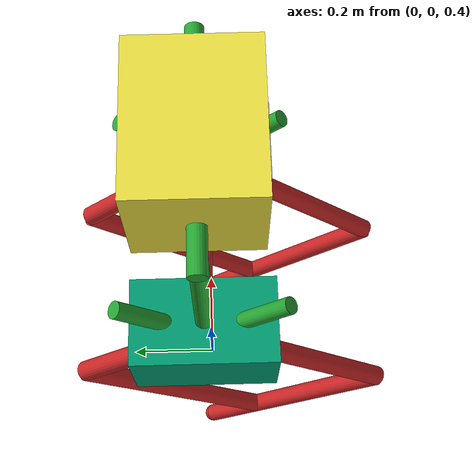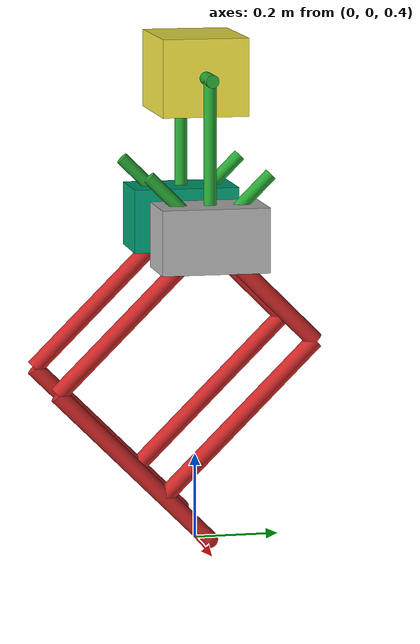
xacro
<?xml version="1.0"?>

<!-- Header File for ATRIAS 2.0 Robot Model -->
<!-- Adapted for ATRIAS 2.0 in Winter Term 2012 by Andrew Peekema and Matthew Rueben -->

<robot name="atrias"
	xmlns:sensor="http://playerstage.sourceforge.net/gazebo/xmlschema/#sensor"
	xmlns:controller="http://playerstage.sourceforge.net/gazebo/xmlschema/#controller"
	xmlns:joint="http://playerstage.sourceforge.net/gazebo/xmlschema/#slider"
	xmlns:xacro="http://www.ros.org/wiki/xacro"
	xmlns:interface="http://playerstage.sourceforge.net/gazebo/xmlschema/#interface"
	xmlns:model="http://playerstage.sourceforge.net/gazebo/xmlschema/#model"
	xmlns:geo="http://willowgarage.com/xmlschema/#geo"
	xmlns:geom="http://playerstage.sourceforge.net/gazebo/xmlschema/#geom"
	xmlns:body="http://playerstage.sourceforge.net/gazebo/xmlschema/#body" >

	<!-- get robot model macro -->
	<include filename="atrias20_leg.urdf.xacro" />
	<include filename="atrias20_torso.urdf.xacro" />
	<include filename="planar_constraint.urdf.xacro" />

	<!--                    Constaints and Model                                 -->

	<!-- Planar Constraint -->
	<xacro:planar_constraint child_attachment_link="torso" />

	<!-- Torso Body -->
	<xacro:atrias_torso torso_link="torso" />

	<!-- Leg 1 -->
	<xacro:torso_motor torso_link="torso" hip_link="leg_hip_link" reflect="1" suffix="1" />

	<xacro:torso_leg_joint hip_link="leg_hip_link" reflect="1" suffix="1" />

	<xacro:atrias_leg hip_link="leg_hip_link" suffix="1">
		<origin xyz="0 0 0.002" />
		<axis>1 0 0</axis>
 	</xacro:atrias_leg>
	<!-- Note: Origin = hip center of mass, and axis = axis of rotation for 4-bar linkage -->

	<!-- Leg 2 -->
	<xacro:torso_motor torso_link="torso" hip_link="leg_hip_link" reflect="-1" suffix="2" />

	<xacro:torso_leg_joint hip_link="leg_hip_link" reflect="-1" suffix="2" />

	<xacro:atrias_leg hip_link="leg_hip_link" suffix="2">
		<origin xyz="0 0 0.002" />
		<axis>1 0 0</axis>
 	</xacro:atrias_leg>

	<!--                    Controller			                                 -->

	<!-- initializes the all-in-one controller with the correct link names, etc. -->
</robot>

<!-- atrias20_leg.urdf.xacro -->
<!-- ATRIAS 2.0 Leg Robot Model -->
<!-- Adapted for ATRIAS 2.0 in Winter Term 2012 by Andrew Peekema and Matthew Rueben -->

<robot
	xmlns:sensor="http://playerstage.sourceforge.net/gazebo/xmlschema/#sensor"
	xmlns:controller="http://playerstage.sourceforge.net/gazebo/xmlschema/#controller"
	xmlns:joint="http://playerstage.sourceforge.net/gazebo/xmlschema/#slider"
	xmlns:xacro="http://www.ros.org/wiki/xacro"
	xmlns:interface="http://playerstage.sourceforge.net/gazebo/xmlschema/#interface"
	xmlns:model="http://playerstage.sourceforge.net/gazebo/xmlschema/#model"
	xmlns:geo="http://willowgarage.com/xmlschema/#geo"
	xmlns:geom="http://playerstage.sourceforge.net/gazebo/xmlschema/#geom"
	xmlns:body="http://playerstage.sourceforge.net/gazebo/xmlschema/#body" >

	<!-- Mathematical Constants -->
	<property name="M_PI" value="3.14159"/>
	<property name="SQRT_2" value="1.41421356"/>

	<!-- Visual Parameters (no effect on physical simulation) -->
	<property name="body_size" value="0.25 0.15 0.15" />
	<property name="visual_motor_radius" value="0.015" />
	<property name="leg_segment_radius" value="0.02" />
	<property name="toe_radius" value="0.02" />
	<property name="visual_motor_length" value="0.4" />

	<!-- Leg Segment Lengths -->
	<property name="thigh_length" value="0.500" />
	<property name="shin_length" value="0.350" />
	<property name="lower_length" value="0.500" />
	<property name="fourBar_length" value="0.500" />

	<!-- Link Masses -->
	<property name="body_mass" value="11.61" />
	<property name="motor_mass" value="1.273" />
	<property name="thigh_mass" value="3.132" />
	<property name="shin_mass" value="3.137" />
	<property name="lower_mass" value="0.204" />
	<property name="fourBar_mass" value="0.166" />
	<property name="toe_mass" value="0.087" />

	<!-- Spring/Damping Coefficients -->
	<property name="spring_stiffness" value="1200" />	<!-- N*m/rad -->
	<property name="motor_damping" value="0" />		<!-- N*m*s/rad -->
	<property name="motor_friction" value="0" />

	<!-- macro to use in the header file when parsed by xacro -->
	<xacro:macro name="atrias_leg" params="hip_link suffix *origin *axis" >

		<!--								Body                                     -->

		<link name="${hip_link}${suffix}">
			<inertial>
				<insert_block name="origin" />
				<mass value="${body_mass}" />
				<inertia ixx="0.0932" ixy="0.0044" ixz="-0.0019"
						 iyy="0.0833" iyz="-0.0102"
					     izz="0.0785" />
			</inertial>
			<visual>
				<origin xyz="0 0 0" rpy="0 0 0" />
				<geometry>
				  <box size="${body_size}" />
				</geometry>
			</visual>
			<collision>
				<origin xyz="0 0 0" rpy="0 0 0" />
				<geometry>
				  <box size="${body_size}" />
				</geometry>
			</collision>
		</link>

		<gazebo reference="${hip_link}${suffix}">
			<material>Gazebo/BumpyMetal</material>
		</gazebo>

		<!--								Thigh Motor                              -->

		<joint name="hip_thighMotor_joint${suffix}" type="continuous">
			<axis xyz="0 1 0" />
			<origin xyz="0 0 0" rpy="0 0 0" />
			<parent link="${hip_link}${suffix}" />
			<child link="thighMotor_link${suffix}" />
</joint>

		<link name="thighMotor_link${suffix}">
			<inertial>
				<mass value="${motor_mass}"/>
				<origin xyz="0 -0.044 0" />
				<inertia ixx="4" ixy="0" ixz="0"
				         iyy="7.25" iyz="0"
				         izz="4" />
			</inertial>
			<visual>
				<origin xyz="0 0 0" rpy="0 ${-M_PI/4} 0" />
				<geometry>
				  <cylinder length="${visual_motor_length}" radius="${visual_motor_radius}" />
				</geometry>
			</visual>
			<collision>
				<origin xyz="0 0 0" rpy="0 ${-M_PI/4} 0" />
				<geometry>
					<cylinder length="${visual_motor_length}" radius="${visual_motor_radius}" />
				</geometry>
			</collision>
		</link>

		<gazebo reference="thighMotor_link${suffix}">
			<material> Gazebo/Green </material>
		</gazebo>

		<gazebo>
            <controller:joint_impedance name="thighDamping${suffix}" plugin="libjoint_impedance.so">
                <alwaysOn> true </alwaysOn>
                <updateRate> 10000 </updateRate>
				<bodyName1> ${hip_link}${suffix} </bodyName1>
				<bodyName2> thighMotor_link${suffix} </bodyName2>
                <rotationalDamping> ${motor_damping} </rotationalDamping>
                <rotationalFriction> ${motor_friction} </rotationalFriction>
            </controller:joint_impedance>

			<controller:spring name="thighSpring${suffix}" plugin="libspring.so">
				<alwaysOn> true </alwaysOn>
				<updateRate> 10000 </updateRate>
				<bodyName1> thighMotor_link${suffix} </bodyName1>
				<bodyName2> thigh_link${suffix} </bodyName2>
				<rotationalStiffness> ${spring_stiffness} </rotationalStiffness>
			</controller:spring>
		</gazebo>

		<!--					Shin Motor                                           -->

		<joint name="hip_shinMotor_joint${suffix}" type="continuous">
			<axis xyz="0 1 0" />
			<origin xyz="0 0 0" rpy="0 0 0" />
			<parent link="${hip_link}${suffix}" />
			<child link="shinMotor_link${suffix}"/>
</joint>

		<link name="shinMotor_link${suffix}">
			<inertial>
				<mass value="${motor_mass}"/>
				<origin xyz="0 0.044 0" />
				<inertia ixx="4" ixy="0" ixz="0"
				         iyy="7.25" iyz="0"
				         izz="4" />
			</inertial>
			<visual>
				<origin xyz="0 0 0" rpy="0 ${M_PI/4} 0" />
				<geometry>
				  <cylinder length="${visual_motor_length}" radius="${visual_motor_radius}" />
				</geometry>
			</visual>
			<collision>
				<origin xyz="0 0 0" rpy="0 ${M_PI/4} 0" />
				<geometry>
					<cylinder length="${visual_motor_length}" radius="${visual_motor_radius}" />
				</geometry>
			</collision>
		</link>

		<gazebo reference="shinMotor_link${suffix}">
			<material>Gazebo/Green</material>
		</gazebo>

        <gazebo>
            <controller:joint_impedance name="shinDamping${suffix}" plugin="libjoint_impedance.so">
                <alwaysOn> true </alwaysOn>
                <updateRate> 10000 </updateRate>
				<bodyName1> ${hip_link}${suffix} </bodyName1>
				<bodyName2> shinMotor_link${suffix} </bodyName2>
                <rotationalDamping> ${motor_damping} </rotationalDamping>
                <rotationalFriction> ${motor_friction} </rotationalFriction>
            </controller:joint_impedance>

			<controller:spring name="shinSpring${suffix}" plugin="libspring.so">
				<alwaysOn> true </alwaysOn>
				<updateRate> 10000 </updateRate>
				<bodyName1> shinMotor_link${suffix} </bodyName1>
				<bodyName2> shin_link${suffix} </bodyName2>
				<rotationalStiffness> ${spring_stiffness} </rotationalStiffness>
			</controller:spring>
		</gazebo>

		<!--							 Thigh 										-->

		<joint name="body_thigh_joint${suffix}" type="continuous">
			<axis xyz="0 1 0" />
			<origin xyz="0 0 0" rpy="0 0 0" />
			<parent link="${hip_link}${suffix}" />
			<child link="thigh_link${suffix}"/>
</joint>

		<link name="thigh_link${suffix}">
			<inertial>
				<mass value="${thigh_mass}"/>
				<origin xyz="0.100 -0.020 -0.011" />
				<inertia ixx="0.0339" ixy="0.0056" ixz="-0.0179"
				         iyy="0.0688" iyz="-0.0017"
				         izz="0.0512" />
			</inertial>
			<visual>
				<origin xyz="${thigh_length/SQRT_2/2} 0 ${-thigh_length/SQRT_2/2}" rpy="0 ${-M_PI/4} 0" />
				<geometry>
				  <cylinder length="${thigh_length}" radius="${leg_segment_radius}" />
				</geometry>
			</visual>
			<collision>
				<origin xyz="${thigh_length/SQRT_2/2} 0 ${-thigh_length/SQRT_2/2}" rpy="0 ${-M_PI/4} 0" />
				<geometry>
					<cylinder length="${thigh_length}" radius="${leg_segment_radius}" />
				</geometry>
			</collision>
		</link>

		<gazebo reference="thigh_link${suffix}">
			<material>Gazebo/Red</material>
		</gazebo>

		<!--							 Shin 			 							-->

		<joint name="body_shin_joint${suffix}" type="continuous">
			<axis xyz="0 1 0" />
			<origin xyz="0 0 0" rpy="0 0 0" />
			<parent link="${hip_link}${suffix}" />
			<child link="shin_link${suffix}"/>
</joint>

		<link name="shin_link${suffix}">
			<inertial>
				<mass value="${shin_mass}"/>
				<origin xyz="-0.0979 0.0200 -0.0081" />
				<inertia ixx="0.0309" ixy="0.0054" ixz="0.0154"
				         iyy="0.0637" iyz="0.0014"
				         izz="0.0493" />
			</inertial>
			<visual>
				<origin xyz="${-shin_length/SQRT_2/2} 0 ${-shin_length/SQRT_2/2}" rpy="0 ${M_PI/4} 0" />
				<geometry>
				  <cylinder length="${shin_length}" radius="${leg_segment_radius}" />
				</geometry>
			</visual>
			<collision>
				<origin xyz="${-shin_length/SQRT_2/2} 0 ${-shin_length/SQRT_2/2}" rpy="0 ${M_PI/4} 0" />
				<geometry>
					<cylinder length="${shin_length}" radius="${leg_segment_radius}" />
				</geometry>
			</collision>
		</link>

		<gazebo reference="shin_link${suffix}">
			<material>Gazebo/Red</material>
		</gazebo>

		<!--								 Lower Link					 			-->

		<joint name="thigh_lower_joint${suffix}" type="revolute">
			<axis xyz="0 1 0" />
			<origin xyz="${thigh_length/SQRT_2} 0 ${-thigh_length/SQRT_2}" rpy="0 0 0" />
			<parent link="thigh_link${suffix}" />
			<child link="lower_link${suffix}"/>
			<limit lower="${-M_PI/2+0.05}" upper="${M_PI/2}" effort="10000000000000" velocity="100000000000000" />
		</joint>

		<link name="lower_link${suffix}">
			<inertial>
				<mass value="${lower_mass}"/>
				<origin xyz="-0.127 0 -0.141" />
				<inertia ixx="0.0027" ixy="0" ixz="0.0026"
				         iyy="0.0054" iyz="0"
				         izz="0.0028" />
			</inertial>
			<visual>
				<origin xyz="${-lower_length/SQRT_2/2} 0 ${-lower_length/SQRT_2/2}" rpy="0 ${M_PI/4} 0" />
				<geometry>
				  <cylinder length="${lower_length}" radius="${leg_segment_radius}" />
				</geometry>
			</visual>
			<collision>
				<origin xyz="${-lower_length/SQRT_2/2} 0 ${-lower_length/SQRT_2/2}" rpy="0 ${M_PI/4} 0" />
				<geometry>
					<cylinder length="${lower_length}" radius="${leg_segment_radius}" />
				</geometry>
			</collision>
		</link>

		<gazebo reference="lower_link${suffix}">
			<material>Gazebo/Red</material>
		</gazebo>

		<!--								 Four Bar	 							-->

		<joint name="shin_fourBar_joint${suffix}" type="revolute">
			<axis xyz="0 1 0" />
			<origin xyz="${-shin_length/SQRT_2} 0 ${-shin_length/SQRT_2}" rpy="0 0 0" />
			<parent link="shin_link${suffix}" />
			<child link="fourBar_link${suffix}"/>
			<limit lower="${-M_PI/2+0.05}" upper="${M_PI/2}" effort="10000000000000" velocity="100000000000000" />
		</joint>

		<link name="fourBar_link${suffix}">
			<inertial>
				<mass value="${fourBar_mass}"/>
				<origin xyz="0.1633 0 -0.1633" />
				<inertia ixx="0.0033" ixy="0" ixz="-0.0032"
				         iyy="0.0063" iyz="0"
				         izz="0.0033" />
			</inertial>
			<visual>
				<origin xyz="${fourBar_length/SQRT_2/2} 0 ${-fourBar_length/SQRT_2/2}" rpy="0 ${-M_PI/4} 0" />
				<geometry>
				  <cylinder length="${fourBar_length}" radius="${leg_segment_radius}" />
				</geometry>
			</visual>
			<collision>
				<origin xyz="${fourBar_length/SQRT_2/2} 0 ${-fourBar_length/SQRT_2/2}" rpy="0 ${-M_PI/4} 0" />
				<geometry>
					<cylinder length="${fourBar_length}" radius="${leg_segment_radius}" />
				</geometry>
			</collision>

		</link>

		<gazebo reference="fourBar_link${suffix}">
			<material>Gazebo/Red</material>
		</gazebo>

		<!--							Four Bar Linkage Joint						-->

		<gazebo>
			<joint:hinge name="lower_fourBar_joint${suffix}">
				<body1>lower_link${suffix}</body1>
				<body2>fourBar_link${suffix}</body2>
				<anchor>lower_link${suffix}</anchor>
				<insert_block name="axis" />
				<anchorOffset>${-(lower_length-0.15)/SQRT_2} 0 ${-(lower_length-0.15)/SQRT_2}</anchorOffset>
			</joint:hinge>
		</gazebo>

		<!--							Toe											-->

		<joint name="lower_toe_joint${suffix}" type="continuous">
			<axis xyz="1 0 0" />
			<origin xyz="${-fourBar_length/SQRT_2} 0 ${-fourBar_length/SQRT_2}" rpy="0 0 0" />
			<parent link="lower_link${suffix}" />
			<child link="toe_link${suffix}"/>
		</joint>

		<link name="toe_link${suffix}">
			<inertial>
				<mass value="${toe_mass}"/>
				<origin xyz="0 0 0" />
				<inertia ixx="0.0000001" ixy="0" ixz="0"
				         iyy="0.0000001" iyz="0"
				         izz="0.0000001" />
			</inertial>
			<visual>
				<origin xyz="0 0 0" rpy="0 0 0" />
				<geometry>
				  <sphere radius="${toe_radius}" />
				</geometry>
			</visual>
			<collision>
				<origin xyz="0 0 0" rpy="0 0 0" />
				<geometry>
					<sphere radius="${toe_radius}" />
				</geometry>
			</collision>
		</link>

		<gazebo reference="toe_link${suffix}">
			<mu1 value="100.0" />
			<mu2 value="100.0" />
			<kp  value="1000000.0" />
			<kd  value="1.0" />
			<material>Gazebo/Red</material>
		</gazebo>

	</xacro:macro>

</robot>

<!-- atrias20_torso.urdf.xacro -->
<!-- ATRIAS 2.0 Hip Model -->
<!-- Adapted for ATRIAS 2.0 in Winter Term 2012 by Andrew Peekema and Matthew Rueben -->

<robot
	xmlns:sensor="http://playerstage.sourceforge.net/gazebo/xmlschema/#sensor"
	xmlns:controller="http://playerstage.sourceforge.net/gazebo/xmlschema/#controller"
	xmlns:joint="http://playerstage.sourceforge.net/gazebo/xmlschema/#slider"
	xmlns:xacro="http://www.ros.org/wiki/xacro"
	xmlns:interface="http://playerstage.sourceforge.net/gazebo/xmlschema/#interface"
	xmlns:model="http://playerstage.sourceforge.net/gazebo/xmlschema/#model"
	xmlns:geo="http://willowgarage.com/xmlschema/#geo"
	xmlns:geom="http://playerstage.sourceforge.net/gazebo/xmlschema/#geom"
	xmlns:torso="http://playerstage.sourceforge.net/gazebo/xmlschema/#torso" >

	<!-- Mathematical Constants -->
	<property name="M_PI" value="3.14159"/>
	<property name="SQRT_2" value="1.41421356"/>

	<!-- Visual Parameters (no effect on physical simulation) -->
    <property name="torso_size" value="0.25 0.2 0.18" />
	<property name="torsoMotor_radius" value="0.015" />
	<property name="torsoMotor_length" value="0.2" />
	<property name="coupling_radius" value="0.015" />

	<!-- Link Lengths -->
	<property name="torso_height" value="0.36" />
	<property name="torsoAttachment_length" value="0.17" />

	<!-- Link Masses -->
	<property name="torso_mass" value="0.500" />
	<property name="torsoMotor_mass" value="1.00" />
	<property name="torsoAttachment_mass" value="0.500" />

	<!-- Spring/Damping Coefficients -->
	<property name="torsoMotor_damping" value="${2*0.5*34.64}" />	<!-- 2*Zeta*sqrt(K) (Guessed Zeta)-->
	<property name="torsoMotor_friction" value="1" />				<!-- Guess -->

    <xacro:macro name="atrias_torso" params="torso_link" >

        <!--                                Torso                                     -->

        <link name="${torso_link}">
            <inertial>
                <origin xyz="0 0 0" />
                <mass value="${torso_mass}" />
                <inertia ixx="0.01" ixy="0" ixz="0"
                         iyy="0.01" iyz="0"
                         izz="0.01" />
            </inertial>
            <visual>
                <origin xyz="0 0 0" rpy="0 0 0" />
                <geometry>
                  <box size="${torso_size}" />
                </geometry>
            </visual>
            <collision>
                <origin xyz="0 0 0" rpy="0 0 0" />
                <geometry>
                  <box size="${torso_size}" />
                </geometry>
            </collision>
        </link>
        <gazebo reference="${torso_link}">
            <material>Gazebo/BumpyMetal</material>
        </gazebo>

    </xacro:macro>

	<xacro:macro name="torso_motor" params="torso_link reflect suffix hip_link" >

		<!--						Torso Motor		                              -->

		<joint name="torso_torsoMotor${suffix}_joint" type="continuous">
			<axis xyz="0 1 0" />
			<origin xyz="0 0 0" rpy="0 0 0" />
			<parent link="${torso_link}" />
			<child link="torsoMotor${suffix}" />
			<dynamics damping="${torsoMotor_damping}" friction="${torsoMotor_friction}" />
		</joint>

		<link name="torsoMotor${suffix}">
			<inertial>
				<mass value="${torsoMotor_mass}"/>
				<origin xyz="${reflect*0.05} 0 0" />
				<inertia ixx="3" ixy="0.0" ixz="0.0"
						 iyy="5" iyz="0.0"
						 izz="3" />
			</inertial>
			<visual>
				<origin xyz="${torsoMotor_length/2*reflect} 0 0" rpy="0 ${M_PI/2} 0" />
				<geometry>
				  <cylinder length="${torsoMotor_length}" radius="${torsoMotor_radius}" />
				</geometry>
			</visual>
			<collision>
				<origin xyz="${torsoMotor_length/2*reflect} 0 0" rpy="0 ${M_PI/2} 0" />
				<geometry>
					<cylinder length="${torsoMotor_length}" radius="${torsoMotor_radius}" />
				</geometry>
			</collision>
		</link>

		<gazebo reference="torsoMotor${suffix}">
			<material> Gazebo/Green </material>
		</gazebo>

		<!--						Coupling		                              -->

		<joint name="torsoMotor${suffix}_coupling${suffix}_joint" type="continuous">
			<axis xyz="0 1 0" />
			<origin xyz="${torsoAttachment_length*reflect} 0 0" rpy="0 0 0" />
			<parent link="torsoMotor${suffix}" />
			<child link="coupling${suffix}" />
		</joint>

		<link name="coupling${suffix}">
			<inertial>
				<mass value="0.01"/>
				<origin xyz="0 0 0" />
				<inertia ixx="0.001" ixy="0.0" ixz="0.0"
						 iyy="0.001" iyz="0.0"
						 izz="0.001" />
			</inertial>
			<visual>
				<origin xyz="0 0 ${-torso_height/2}" rpy="0 0 0" />
				<geometry>
				  <cylinder length="${torso_height}" radius="${coupling_radius}" />
				</geometry>
			</visual>
			<collision>
				<origin xyz="0 0 ${-torso_height/2}" rpy="0 0 0" />
				<geometry>
					<cylinder length="${torso_height}" radius="${coupling_radius}" />
				</geometry>
			</collision>
		</link>

		<gazebo reference="coupling${suffix}">
			<material> Gazebo/Green </material>
		</gazebo>

		<!--					Torso Attachment                                    -->

		<joint name="torso_torsoAttachment${suffix}_joint" type="continuous">
			<axis xyz="0 1 0" />
			<origin xyz="0 0 ${-torso_height}" rpy="0 0 0" />
			<parent link="${torso_link}" />
			<child link="torsoAttachment${suffix}"/>
		</joint>

		<link name="torsoAttachment${suffix}">
			<inertial>
				<mass value="${torsoAttachment_mass}"/>
				<origin xyz="${reflect*0.05} 0 0" />
				<inertia ixx="0.01" ixy="0.0" ixz="0.0"
						 iyy="0.01" iyz="0.0"
						 izz="0.01" />
			</inertial>
			<visual>
				<origin xyz="${torsoAttachment_length/2*reflect} 0 0" rpy="0 ${M_PI/2} 0" />
				<geometry>
				  <cylinder length="${torsoAttachment_length}" radius="${torsoMotor_radius}" />
				</geometry>
			</visual>
			<collision>
				<origin xyz="${torsoAttachment_length/2*reflect} 0 0" rpy="0 ${M_PI/2} 0" />
				<geometry>
				  <cylinder length="${torsoAttachment_length}" radius="${torsoMotor_radius}" />
				</geometry>
			</collision>
		</link>

		<gazebo reference="torsoAttachment${suffix}">
			<material> Gazebo/Red </material>
		</gazebo>

		<!--					Four Bar Joint                                    -->

		<gazebo>
			<joint:hinge name="torsoFourBar${suffix}_joint">
				<body1>coupling${suffix}</body1>
				<body2>torsoAttachment${suffix}</body2>
				<anchor>coupling${suffix}</anchor>
				<axis>0 1 0</axis>
				<anchorOffset>0 0 ${-torso_height}</anchorOffset>
			</joint:hinge>
		</gazebo>

	</xacro:macro>

    <xacro:macro name="torso_leg_joint" params="suffix reflect hip_link" >

		<!--					Leg Attachment                                    -->

		<joint name="torsoAttachment${suffix}_leg_joint" type="fixed">
			<origin xyz="${torsoAttachment_length*reflect} 0 0" rpy="0 0 ${-M_PI/2}" />
			<parent link="torsoAttachment${suffix}" />
			<child link="${hip_link}${suffix}"/>
		</joint>

	</xacro:macro>

</robot>

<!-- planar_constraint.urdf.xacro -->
<!-- Planar Linkage -->
<!-- Created for ATRIAS 2.0 in Winter Term 2012 by Andrew Peekema and Matthew Rueben -->

<robot
	xmlns:sensor="http://playerstage.sourceforge.net/gazebo/xmlschema/#sensor"
	xmlns:controller="http://playerstage.sourceforge.net/gazebo/xmlschema/#controller"
	xmlns:joint="http://playerstage.sourceforge.net/gazebo/xmlschema/#slider"
	xmlns:xacro="http://www.ros.org/wiki/xacro"
	xmlns:interface="http://playerstage.sourceforge.net/gazebo/xmlschema/#interface"
	xmlns:model="http://playerstage.sourceforge.net/gazebo/xmlschema/#model"
	xmlns:geo="http://willowgarage.com/xmlschema/#geo"
	xmlns:geom="http://playerstage.sourceforge.net/gazebo/xmlschema/#geom"
	xmlns:body="http://playerstage.sourceforge.net/gazebo/xmlschema/#body" >

	<!-- Mathematical Constants -->
	<property name="M_PI" value="3.14159"/>
	<property name="SQRT_2" value="1.41421356"/>

	<!-- macro name used to insert this entire file into the header file when parsed by xacro -->
	<xacro:macro name="planar_constraint" params="child_attachment_link">

		<!--							Planar Motion								-->

		<link name="world" />

		<joint name="world_joint" type="continuous">
			<origin xyz="0 0 0" rpy="0 0 0" />
			<axis xyz="0 1 0" />
			<parent link="world" />
			<child link="world_link"/>
		</joint>

		<link name="world_link">
			<inertial>
				<mass value="0.00001"/>
				<origin xyz="0 0 0" />
				<inertia ixx="0.00001" ixy="0" ixz="0"
				         iyy="0.00001" iyz="0"
				         izz="0.00001" />
			</inertial>
		</link>

		<joint name="planar_joint" type="prismatic">
			<origin xyz="0 0 1.5" rpy="0 0 0" />
			<axis xyz="0 0 1" />
			<limit upper="100" lower="-100" effort="1000000000" velocity="1000000000"/>
			<parent link="world_link" />
			<child link="body_no_twist_link"/>
		</joint>

		<link name="body_no_twist_link">
			<inertial>
				<mass value="0.00001"/>
				<origin xyz="0 0 0" />
				<inertia ixx="0.00001" ixy="0" ixz="0"
				         iyy="0.00001" iyz="0"
				         izz="0.00001" />
			</inertial>
		</link>

		<joint name="body_no_twist_joint" type="continuous">
			<origin xyz="0 0 0" rpy="0 0 0" />
			<axis xyz="0 1 0" />
			<parent link="body_no_twist_link" />
			<child link="${child_attachment_link}"/>
		</joint>

	</xacro:macro>

</robot>
